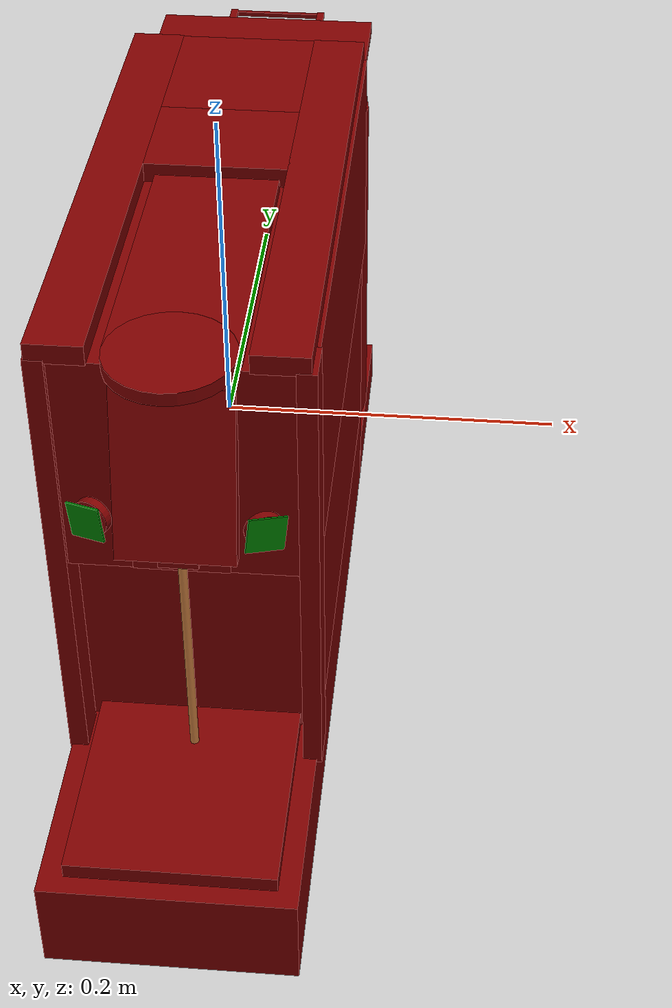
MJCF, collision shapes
<?xml version='1.0' encoding='UTF-8'?>
<mujoco model="model">
  <compiler angle="radian"/>
  <asset>
    <mesh file="visuals/Body001.obj" name="Body001_vis"/>
    <mesh file="visuals/Button001.obj" name="Button001_vis"/>
    <mesh file="visuals/Button002.obj" name="Button002_vis"/>
    <mesh file="visuals/Container001_Clear.obj" name="Container001_Clear_vis"/>
    <mesh file="visuals/Lid001.obj" name="Lid001_vis"/>
    <mesh file="visuals/Lid002.obj" name="Lid002_vis"/>
    <mesh file="visuals/Lid003.obj" name="Lid003_vis"/>
    <texture file="visuals/T_BC001.png" name="Body001_material" type="2d"/>
    <material name="Body001_material" rgba="1 1 1 1.0" texture="Body001_material" shininess="0.4472135901451111" specular="0.3103448502657381"/>
    <texture file="visuals/T_BC001.png" name="Button001_material" type="2d"/>
    <material name="Button001_material" rgba="1 1 1 1.0" texture="Button001_material" shininess="0.4472135901451111" specular="0.3103448502657381"/>
    <texture file="visuals/T_BC001.png" name="Button002_material" type="2d"/>
    <material name="Button002_material" rgba="1 1 1 1.0" texture="Button002_material" shininess="0.4472135901451111" specular="0.3103448502657381"/>
    <texture file="visuals/T_BC001.png" name="Button003_material" type="2d"/>
    <material name="Button003_material" rgba="1 1 1 1.0" texture="Button003_material" shininess="0.4472135901451111" specular="0.3103448502657381"/>
    <material name="Container001_Clear_material" rgba="0.2952549457550049 0.2620540261268616 0.2423035353422165 0.30725806951522827" shininess="0.5" specular="0.3103448502657381"/>
    <texture file="visuals/T_BC001.png" name="Lid003_material" type="2d"/>
    <material name="Lid003_material" rgba="1 1 1 1.0" texture="Lid003_material" shininess="0.4472135901451111" specular="0.3103448502657381"/>
    <texture file="visuals/T_BC001.png" name="Lid001_material" type="2d"/>
    <material name="Lid001_material" rgba="1 1 1 1.0" texture="Lid001_material" shininess="0.4472135901451111" specular="0.3103448502657381"/>
    <texture file="visuals/T_BC001.png" name="Lid002_material" type="2d"/>
    <material name="Lid002_material" rgba="1 1 1 1.0" texture="Lid002_material" shininess="0.4472135901451111" specular="0.3103448502657381"/>
  </asset>
  <default>
    <default class="visual">
      <geom conaffinity="0" contype="0" group="1" type="mesh"/>
    </default>
    <default class="collision">
      <geom group="0" rgba="0.5 0 0 0.5"/>
    </default>
    <default class="spawn">
      <geom group="0" rgba="1 1 1 0.5" contype="0" conaffinity="0"/>
      <site group="0" rgba="1 1 1 0.5"/>
    </default>
    <default class="region">
      <geom group="1" conaffinity="0" contype="0" rgba="0 1 0 0"/>
    </default>
  </default>
  <worldbody>
    <body>
      <body name="object">
        <geom class="collision" type="box" pos="-0.04652353748679161 -0.19853784143924713 0.0747976005077362" size="0.010344439186155796 0.010344435460865498 0.0006741779507137835" quat="0.7112261652946472 0.6677684187889099 -0.19522026181221008 -0.10065632313489914" name="start_button_2" rgba="0.0 0.5 0 0.5"/>
        <geom class="collision" type="box" pos="0.04801139608025551 -0.1984570175409317 0.07307130843400955" size="0.010688003152608871 0.010687998495995998 0.0005091145285405219" quat="0.7116045355796814 0.6703872084617615 0.186036616563797 0.09793007373809814" name="start_button_1" rgba="0.0 0.5 0 0.5"/>
        <site type="cylinder" rgba="0.8 0.5 0.25 1" size="0.0024999999441206455 0.11300425976514816" pos="-2.439325544401072e-05 -0.18398573994636536 -0.057357124984264374" name="coffee_liquid"/>
        <site rgba="0 0 0 0" size="0.009999999776482582 0.009999999776482582" pos="1.3942513760412112e-05 -0.18653351068496704 -0.09662725776433945" name="receptacle_place_site"/>
        <geom mesh="Body001_vis" type="mesh" solimp="0.998 0.998 0.001" solref="0.001 1" density="100" friction="0.95 0.3 0.1" class="visual" material="Body001_material"/>
        <geom class="collision" type="box" pos="-0.0012984913773834705 -0.06986425817012787 -0.14359328150749207" size="0.07204368710517883 0.22021633386611938 0.02972189337015152" quat="1.0 0.0 0.0 0.0"/>
        <geom class="collision" type="box" pos="-0.0012984913773834705 0.21099568903446198 -0.1580948680639267" size="0.07204368710517883 0.060235217213630676 0.015220314264297485" quat="1.0 0.0 0.0 0.0"/>
        <geom class="collision" type="box" pos="-0.0012984913773834705 -0.0016560154035687447 0.007572958245873451" size="0.07204368710517883 0.15399298071861267 0.12361911684274673" quat="1.0 0.0 0.0 0.0"/>
        <geom class="collision" type="box" pos="-0.06901177018880844 -0.17078325152397156 0.02470748871564865" size="0.005422599148005247 0.011838828213512897 0.14075365662574768" quat="1.0 0.0 0.0 0.0"/>
        <geom class="collision" type="box" pos="0.06845975667238235 -0.17078325152397156 0.02470748871564865" size="0.005422599148005247 0.011838828213512897 0.14075365662574768" quat="1.0 0.0 0.0 0.0"/>
        <geom class="collision" type="box" pos="-0.00012401427375152707 -0.18707944452762604 0.10153896361589432" size="0.0325106680393219 0.004848794545978308 0.05061911791563034" quat="0.9943464398384094 -0.1061844751238823 2.3577724569639986e-17 5.134872336926335e-24"/>
        <geom class="collision" type="box" pos="0.055444784462451935 -0.014247260987758636 0.1694256067276001" size="0.015515233390033245 0.16779345273971558 0.005796937737613916" quat="1.0 0.0 0.0 0.0"/>
        <geom class="collision" type="box" pos="-0.05791618674993515 -0.014247260987758636 0.1694256067276001" size="0.015655258670449257 0.16779345273971558 0.005796937737613916" quat="1.0 0.0 0.0 0.0"/>
        <geom class="collision" type="box" pos="-0.0009327242150902748 0.028199076652526855 0.1694256067276001" size="0.04144953936338425 0.03292513266205788 0.005796937737613916" quat="1.0 0.0 0.0 0.0"/>
        <geom class="collision" type="box" pos="-0.0009327273583039641 0.10334859788417816 0.1694256067276001" size="0.04144955426454544 0.04893093183636665 0.005796937737613916" quat="1.0 0.0 0.0 0.0"/>
        <geom class="collision" type="box" pos="-2.4393200874328613e-05 -0.18449436128139496 0.04751157760620117" size="0.010950170457363129 0.010950170457363129 0.00456221355125308" quat="1.0 0.0 0.0 0.0"/>
        <geom class="collision" type="box" pos="-2.4393200874328613e-05 -0.18449436128139496 0.04171747341752052" size="0.004728950560092926 0.004728950560092926 0.0029425860848277807" quat="1.0 0.0 0.0 0.0"/>
        <geom class="collision" type="box" pos="-0.04654517024755478 -0.013404285535216331 0.09532497823238373" size="0.02678225189447403 0.16590256989002228 0.06799985468387604" quat="1.0 0.0 0.0 0.0"/>
        <geom class="collision" type="box" pos="0.04636911302804947 -0.013404285535216331 0.09532497823238373" size="0.026612915098667145 0.16590256989002228 0.06799982488155365" quat="1.0 0.0 0.0 0.0"/>
        <geom class="collision" type="box" pos="-0.0012465305626392365 0.031132809817790985 0.09532497823238373" size="0.026612915098667145 0.1207849532365799 0.06799963861703873" quat="1.0 0.0 0.0 0.0"/>
        <geom class="collision" type="box" pos="-0.0012465305626392365 -0.15521612763404846 0.09532497823238373" size="0.026612915098667145 0.024870295077562332 0.06799976527690887" quat="1.0 0.0 0.0 0.0"/>
        <body name="Button001">
          <joint axis="-0.402951717376709 0.9152212738990784 0.0" pos="0.04518451169133186 -0.19240479171276093 0.07275570929050446" limited="true" name="Button001_joint" range="0.0 0.003" type="slide" damping="1" frictionloss="1" armature=".01" stiffness="0.05"/>
          <geom mesh="Button001_vis" type="mesh" solimp="0.998 0.998 0.001" solref="0.001 1" density="100" friction="0.95 0.3 0.1" class="visual" material="Button001_material"/>
          <geom class="collision" type="cylinder" pos="0.046617794781923294 -0.19522815942764282 0.07295891642570496" size="0.010688003152608871 0.0025342958979308605" quat="0.7116045355796814 0.6703872084617615 0.186036616563797 0.09793007373809814"/>
        </body>
        <body name="Button002">
          <joint axis="0.36863595247268677 0.9287900328636169 0.038164716213941574" pos="-0.04416261985898018 -0.193179190158844 0.0746019184589386" limited="true" name="Button002_joint" range="0.0 0.004" type="slide" damping="1" frictionloss="1" armature=".01" stiffness="0.05"/>
          <geom mesh="Button002_vis" type="mesh" solimp="0.998 0.998 0.001" solref="0.001 1" density="100" friction="0.95 0.3 0.1" class="visual" material="Button002_material"/>
          <geom class="collision" type="cylinder" pos="-0.044056329876184464 -0.193351611495018 0.07444527745246887" size="0.010688004083931446 0.0025342958979308605" quat="0.7116045355796814 0.6703872680664062 -0.1860366314649582 -0.09793007373809814"/>
        </body>
        <body name="Container001_Clear">
          <joint axis="0.0 0.0 1.0" pos="0.00013505000970326364 0.21682430803775787 -0.024764250963926315" limited="true" name="Container001_Clear_joint" range="0.0 0.08" type="slide" damping="1" frictionloss="1" armature=".01" stiffness="0.05"/>
          <geom mesh="Container001_Clear_vis" type="mesh" solimp="0.998 0.998 0.001" solref="0.001 1" density="100" friction="0.95 0.3 0.1" class="visual" material="Container001_Clear_material"/>
          <geom class="collision" type="box" pos="-0.0012984913773834705 0.15692675113677979 -0.014521479606628418" size="0.053463928401470184 0.00262853573076427 0.12245668470859528" quat="1.0 0.0 0.0 0.0"/>
          <geom class="collision" type="box" pos="-0.058459505438804626 0.16060024499893188 -0.014521479606628418" size="0.0067219240590929985 0.0022378561552613974 0.12245668470859528" quat="0.9318533539772034 0.0 0.0 -0.362835168838501"/>
          <geom class="collision" type="box" pos="-0.06528841704130173 0.17273128032684326 -0.014521479606628418" size="0.008961043320596218 0.0022378559224307537 0.12245668470859528" quat="0.7958449721336365 0.0 0.0 -0.6055004596710205"/>
          <geom class="collision" type="box" pos="-0.06797030568122864 0.188904270529747 -0.014521479606628418" size="0.002500418806448579 0.009022975340485573 0.12245668470859528" quat="1.0 0.0 0.0 0.0"/>
          <geom class="collision" type="box" pos="-0.06642011553049088 0.21034851670265198 -0.014521479606628418" size="0.01506042294204235 0.0022378559224307537 0.12245668470859528" quat="0.6587887406349182 0.0 0.0 -0.7523279786109924"/>
          <geom class="collision" type="box" pos="-0.05737735703587532 0.23675337433815002 -0.014521479606628418" size="0.0150604248046875 0.0022378559224307537 0.12245668470859528" quat="0.49419552087783813 0.0 0.0 -0.869350790977478"/>
          <geom class="collision" type="box" pos="-0.03929184004664421 0.2553039491176605 -0.014521479606628418" size="0.0150604248046875 0.0022378561552613974 0.12245668470859528" quat="0.28371185064315796 0.0 0.0 -0.9589095711708069"/>
          <geom class="collision" type="box" pos="-0.014437176287174225 0.2649151086807251 -0.014521479606628418" size="0.01506042294204235 0.002237856388092041 0.12245668470859528" quat="0.06460487097501755 0.0 0.0 -0.9979109168052673"/>
          <geom class="collision" type="box" pos="0.013931242749094963 0.2650184631347656 -0.014521479606628418" size="0.0150604248046875 0.0022378559224307537 0.12245668470859528" quat="0.07452089339494705 0.0 0.0 0.997219443321228"/>
          <geom class="collision" type="box" pos="0.0401294007897377 0.2550455927848816 -0.014521479606628418" size="0.01506042294204235 0.0022378559224307537 0.12245668470859528" quat="0.28778699040412903 0.0 0.0 0.9576944708824158"/>
          <geom class="collision" type="box" pos="0.05865723639726639 0.23421107232570648 -0.014521479606628418" size="0.01506042294204235 0.0022378559224307537 0.12245668470859528" quat="0.5296655297279358 0.0 0.0 0.848206639289856"/>
          <geom class="collision" type="box" pos="0.06736412644386292 0.20645444095134735 -0.014521479606628418" size="0.0150604248046875 0.0022378559224307537 0.12245668470859528" quat="0.6550995111465454 0.0 0.0 0.7555425763130188"/>
          <geom class="collision" type="box" pos="0.06700318306684494 0.17940156161785126 -0.014521479606628418" size="0.013179861009120941 0.0022378559224307537 0.12245668470859528" quat="0.7724838852882385 0.0 0.0 0.6350343823432922"/>
          <geom class="collision" type="box" pos="0.05800348520278931 0.16170360147953033 -0.014521479606628418" size="0.009633473120629787 0.00223785568960011 0.12245668470859528" quat="0.9465205669403076 0.0 0.0 0.3226434290409088"/>
          <geom class="collision" type="box" pos="-0.0012984913773834705 0.19822707772254944 -0.1356978416442871" size="0.05588650703430176 0.04090724140405655 0.0026285392232239246" quat="1.0 0.0 0.0 0.0"/>
          <geom class="collision" type="box" pos="-0.0012984913773834705 0.2507207989692688 -0.1356978416442871" size="0.028341200202703476 0.014146403409540653 0.0026285259518772364" quat="1.0 0.0 0.0 0.0"/>
          <geom class="collision" type="box" pos="0.0337035097181797 0.24143455922603607 -0.1356978416442871" size="0.019269196316599846 0.002628537593409419 0.014146402478218079" quat="0.6696438789367676 -0.6696439385414124 0.2271057665348053 -0.2271057814359665"/>
          <geom class="collision" type="box" pos="-0.03535697981715202 0.23996601998806 -0.1356978416442871" size="0.019269196316599846 0.002628537593409419 0.014146402478218079" quat="0.26227328181266785 -0.2622733414173126 0.6566678881645203 -0.6566678881645203"/>
          <geom class="collision" type="box" pos="-0.05871545895934105 0.21392881870269775 -0.1356978416442871" size="0.019269196316599846 0.002628537593409419 0.005380535498261452" quat="0.45619216561317444 -0.4561921954154968 0.540267288684845 -0.5402671694755554"/>
          <geom class="collision" type="box" pos="-0.05948753282427788 0.18026502430438995 -0.1356978416442871" size="0.019269192591309547 0.002628537593409419 0.005918747745454311" quat="0.538727343082428 -0.5387274622917175 0.45800966024398804 -0.4580094814300537"/>
          <geom class="collision" type="box" pos="0.060045089572668076 0.18831996619701385 -0.1356978416442871" size="0.022040346637368202 0.002628537593409419 0.007578243967145681" quat="0.5118734240531921 -0.5118741393089294 -0.48783764243125916 0.4878369867801666"/>
          <geom class="collision" type="box" pos="0.057613443583250046 0.218625009059906 -0.1356978416442871" size="0.019269192591309547 0.002628537593409419 0.005918746814131737" quat="0.4358383119106293 -0.4358383119106293 -0.5568168759346008 0.5568167567253113"/>
          <geom class="collision" type="box" pos="0.05560121685266495 0.1661006063222885 -0.1356978416442871" size="0.005416189786046743 0.002628537593409419 0.007578244898468256" quat="0.3460458815097809 -0.3460458517074585 -0.6166459918022156 0.6166459321975708"/>
          <body name="Lid003">
            <joint axis="1.0 0.0 0.0" pos="0.00013670847692992538 0.160652756690979 0.12757888436317444" limited="true" name="Lid003_joint" range="0.0 1.5707963267948966" type="hinge" damping="1" frictionloss="1" armature=".01" stiffness="0.05"/>
            <geom mesh="Lid003_vis" type="mesh" solimp="0.998 0.998 0.001" solref="0.001 1" density="100" friction="0.95 0.3 0.1" class="visual" material="Lid003_material"/>
            <geom class="collision" type="box" pos="-0.0033314675092697144 0.22695180773735046 0.12769341468811035" size="0.07117515802383423 0.04168156906962395 0.003936346620321274" quat="1.0 0.0 0.0 0.0"/>
            <geom class="collision" type="box" pos="0.0014756571035832167 0.2835221290588379 0.1274529993534088" size="0.02780584618449211 0.0012085577473044395 0.0014988974435254931" quat="1.0 0.0 0.0 0.0"/>
            <geom class="collision" type="box" pos="0.031249433755874634 0.2762707471847534 0.1277010440826416" size="0.00235338369384408 0.009163274429738522 0.0015512845711782575" quat="1.0 0.0 0.0 0.0"/>
            <geom class="collision" type="box" pos="-0.02874518185853958 0.2762707471847534 0.1277010440826416" size="0.0023533848579972982 0.00916327815502882 0.0015512845711782575" quat="1.0 0.0 0.0 0.0"/>
          </body>
        </body>
        <body name="Lid001">
          <joint axis="-1.0 0.0 0.0" pos="-0.00014647844363935292 -0.012671813368797302 0.1681012213230133" limited="true" name="Lid001_joint" range="0.0 1.5707963267948966" type="hinge" damping="1" frictionloss="1" armature=".01" stiffness="0.05"/>
          <geom mesh="Lid001_vis" type="mesh" solimp="0.998 0.998 0.001" solref="0.001 1" density="100" friction="0.95 0.3 0.1" class="visual" material="Lid001_material"/>
          <geom class="collision" type="box" pos="0.0007090866565704346 -0.09497564285993576 0.16861531138420105" size="0.03528226166963577 0.08336244523525238 0.00374074699357152" quat="1.0 0.0 0.0 0.0"/>
          <geom class="collision" type="cylinder" pos="-2.4393200874328613e-05 -0.17856191098690033 0.16864392161369324" size="0.03453980013728142 0.003827712731435895" quat="1.0 0.0 0.0 0.0"/>
        </body>
        <body name="Lid002">
          <joint axis="0.0 0.0 1.0" pos="-2.4282882804982364e-05 -0.22100277245044708 -0.10634111613035202" limited="true" name="Lid002_joint" range="0.0 0.08" type="slide" damping="1" frictionloss="1" armature=".01" stiffness="0.05"/>
          <geom mesh="Lid002_vis" type="mesh" solimp="0.998 0.998 0.001" solref="0.001 1" density="100" friction="0.95 0.3 0.1" class="visual" material="Lid002_material"/>
          <geom class="collision" type="box" pos="-0.00019441723998170346 -0.21860730648040771 -0.10766613483428955" size="0.05922035500407219 0.06147303804755211 0.004763836041092873" quat="1.0 0.0 0.0 0.0"/>
        </body>
        <geom class="region" name="reg_main" type="box" pos="0.0 0.0 0.0" size="0.07072043418884277 0.2855072021484375 0.1720099300146103"/>
      </body>
    </body>
  </worldbody>
  <actuator>
    <motor name="Button001_joint_actuator" joint="Button001_joint" gear="0.5"/>
    <motor name="Button002_joint_actuator" joint="Button002_joint" gear="0.5"/>
    <motor name="Container001_Clear_joint_actuator" joint="Container001_Clear_joint" gear="30"/>
    <motor name="Lid001_joint_actuator" joint="Lid001_joint" gear="10"/>
    <motor name="Lid002_joint_actuator" joint="Lid002_joint" gear="10"/>
    <motor name="Lid003_joint_actuator" joint="Lid003_joint" gear="10"/>
  </actuator>
</mujoco>
